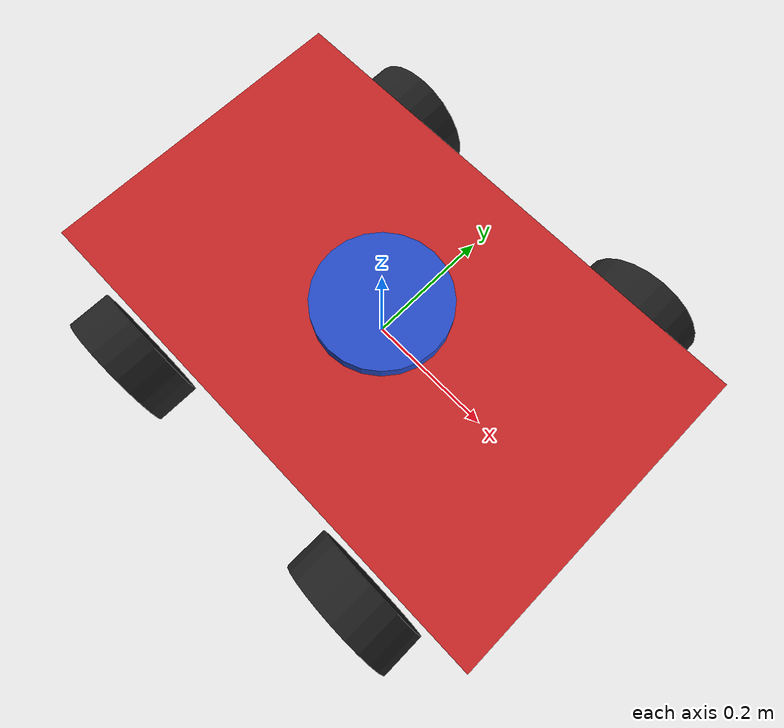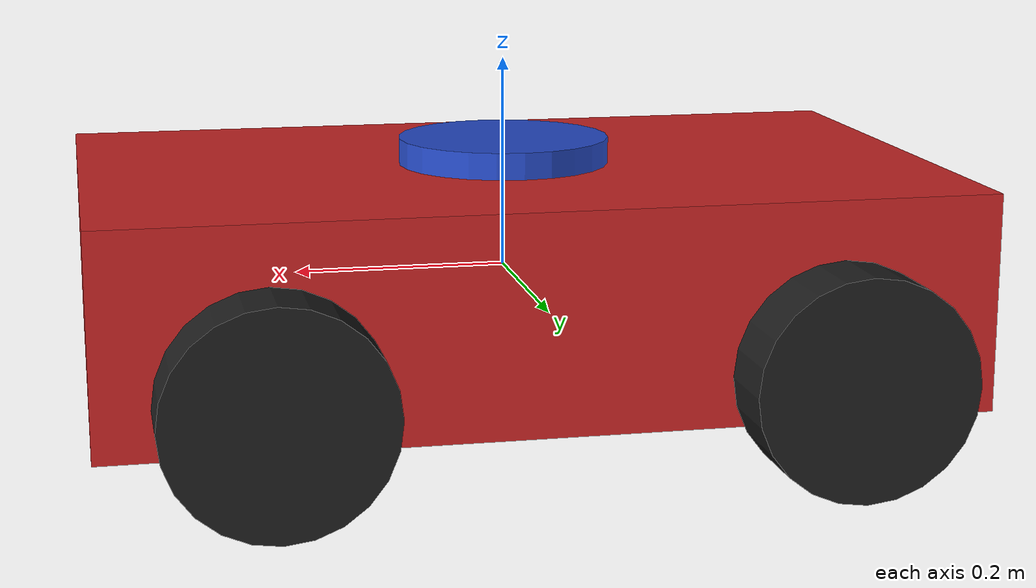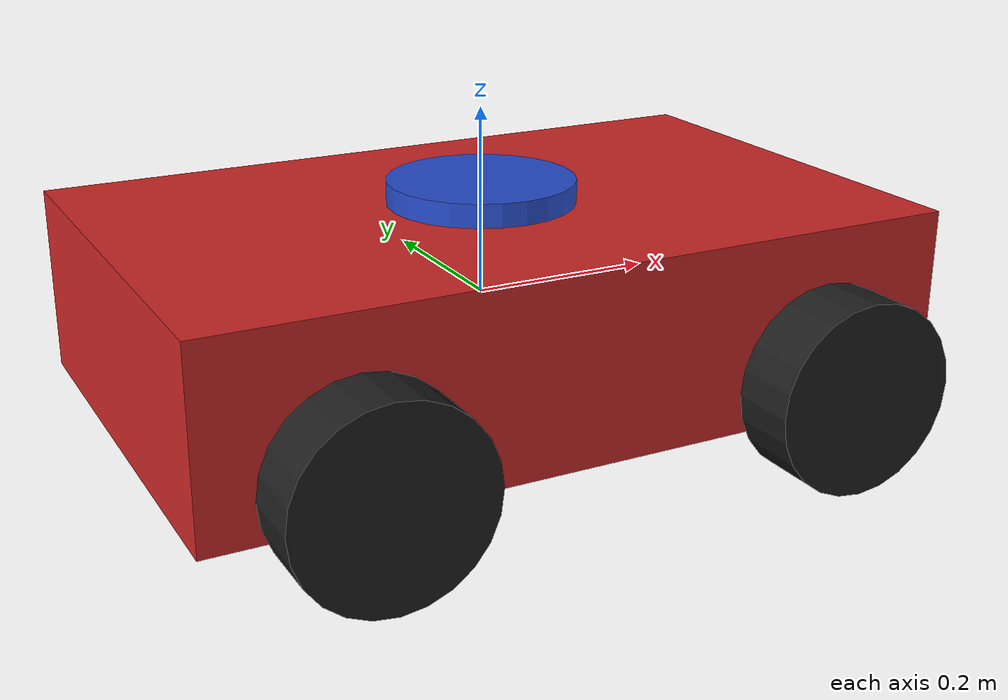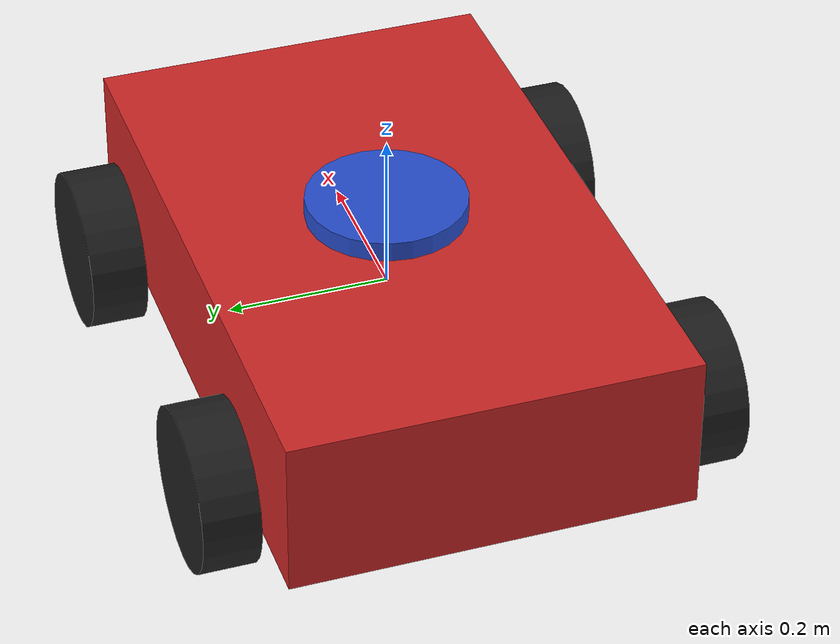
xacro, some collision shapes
<?xml version = "1.0"?>
<robot xmlns:xacro = "http://www.ros.org/wiki/xacro">

  <link name = "base_link">
    <visual>
      <geometry>
        <mesh filename="file://$(find diff_robot_description)/meshes/base_link.stl" scale="0.003 0.003 0.003"/>
      </geometry>
      <origin xyz = "0 0 0" rpy = "0 0 0"/>
      <material name = "red"/>
    </visual>
    <collision>
      <geometry>
        <box size = "0.8 0.5 0.2"/>
      </geometry>
      <origin xyz = "0 0 0" rpy = "0 0 0"/>
    </collision>
  </link>

  <joint name = "base_front_left_wheel_joint" type = "continuous">
    <parent link = "base_link"/>
    <child link = "front_left_wheel"/>
    <origin xyz = "0.25 0.3 -0.05" rpy = "1.57 0 0"/>
    <axis xyz = "0 0 1"/>
  </joint>

  <link name = "front_left_wheel">
    <visual>
      <geometry>
        <cylinder radius = "0.1" length = "0.07"/>
      </geometry>
      <material name = "black"/>
      <origin xyz = "0 0 0" rpy = "0 0 0"/>
    </visual>
    <collision>
      <geometry>
        <cylinder radius = "0.1" length = "0.07"/>
      </geometry>
      <origin xyz = "0 0 0" rpy = "0 0 -1"/>
    </collision>
  </link>

  <link name = "front_right_wheel">
    <visual>
      <geometry>
        <cylinder radius = "0.1" length = "0.07"/>
      </geometry>
      <material name = "black"/>
      <origin xyz = "0 0 0" rpy = "0 0 0"/>
    </visual>
    <collision>
      <geometry>
        <cylinder radius = "0.1" length = "0.07"/>
      </geometry>
      <origin xyz = "0 0 0" rpy = "0 0 0"/>
    </collision>
  </link>

  <joint name = "base_front_right_wheel_joint" type = "continuous">
    <parent link = "base_link"/>
    <child link = "front_right_wheel"/>
    <origin xyz = "0.25 -0.3 -0.05" rpy = "1.57 0 0"/>
    <axis xyz = "0 0 1"/>
  </joint>

  <joint name = "base_rear_left_wheel_joint" type = "continuous">
    <parent link = "base_link"/>
    <child link = "rear_left_wheel"/>
    <origin xyz = "-0.25 0.3 -0.05" rpy = "1.57 0 0"/>
    <axis xyz = "0 0 1"/>
  </joint>

  <link name = "rear_left_wheel">
    <visual>
      <geometry>
        <cylinder radius = "0.1" length = "0.07"/>
      </geometry>
      <material name = "black"/>
      <origin xyz = "0 0 0" rpy = "0 0 0"/>
    </visual>
    <collision>
      <geometry>
        <cylinder radius = "0.1" length = "0.07"/>
      </geometry>
      <origin xyz = "0 0 0" rpy = "0 0 0"/>
    </collision>
  </link>

  <link name = "rear_right_wheel">
    <visual>
      <geometry>
        <cylinder radius = "0.1" length = "0.07"/>
      </geometry>
      <material name = "black"/>
      <origin xyz = "0 0 0" rpy = "0 0 0"/>
    </visual>
    <collision>
      <geometry>
        <cylinder radius = "0.1" length = "0.07"/>
      </geometry>
      <origin xyz = "0 0 0" rpy = "0 0 0"/>
    </collision>
  </link>

  <joint name = "base_rear_right_wheel_joint" type = "continuous">
    <parent link = "base_link"/>
    <child link = "rear_right_wheel"/>
    <origin xyz = "-0.25 -0.3 -0.05" rpy = "1.57 0 0"/>
    <axis xyz = "0 0 1"/>
  </joint>

    <link name = "lidar">
        <visual>
        <geometry>
            <cylinder radius = "0.1" length = "0.05"/>
        </geometry>
        <material name = "blue"/>
        <origin xyz = "0 0 0" rpy = "0 0 0"/>
        </visual>
        <collision>
        <geometry>
            <cylinder radius = "0.1" length = "0.05"/>
        </geometry>
        <origin xyz = "0 0 0" rpy = "0 0 0"/>
        </collision>
    </link>

  <joint name = "base_lidar_joint" type = "continuous">
    <parent link = "base_link"/>
    <child link = "lidar"/>
    <origin xyz = "0 0 0.1" rpy = "0 0 0"/>
  </joint>
</robot>
